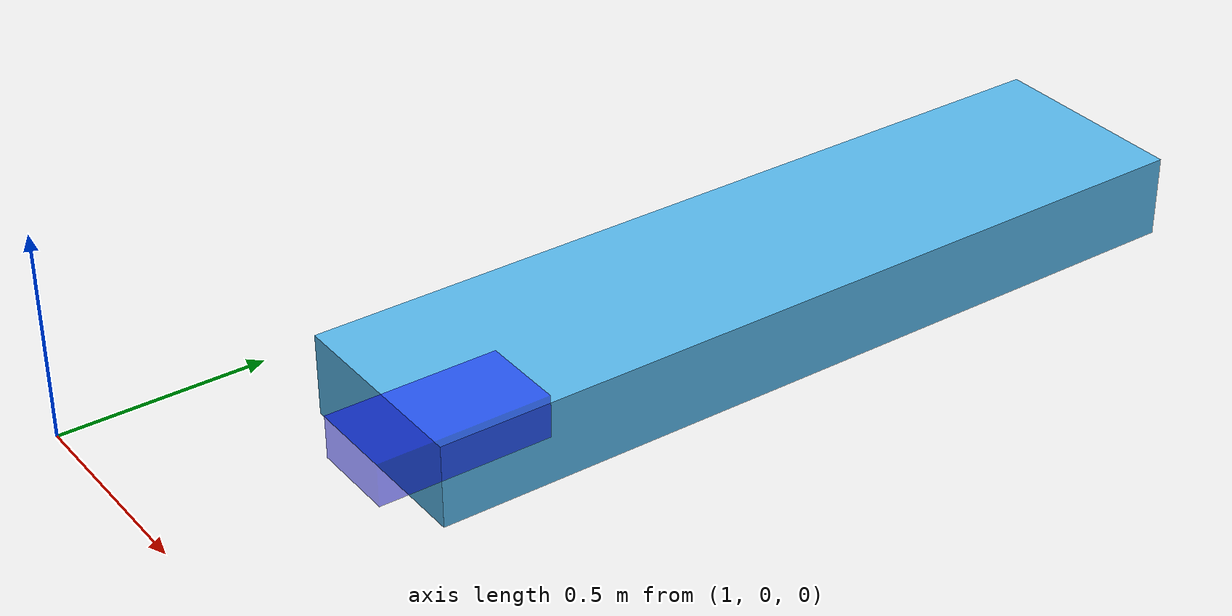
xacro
<?xml version="1.0"?>
<robot xmlns:xacro="http://www.ros.org/wiki/xacro" name="robot">
    <link name="world"/>

    <joint name="base_joint" type="fixed">
        <parent link="world"/>
        <child link="base_link"/>
        <origin xyz="1.5 0.5 0.1"/>
    </joint>

    <link name="base_link">
        <visual>
            <origin xyz="0 1 0" rpy="0 0 0"/>
            <geometry>
                <box size="0.5 2 0.2"/>
            </geometry>
        </visual>
        <collision>
            <origin xyz="0 1 0" rpy="0 0 0"/>
            <geometry>
                <box size="0.5 2 0.2"/>
            </geometry>
        </collision>
        <inertial>
            <origin xyz="0 1 0" rpy="0 0 0"/>
            <mass value="2"/>
            <inertia ixx="0.6733" ixy="0.0" ixz="0.0" iyy="0.04833" iyz="0.0" izz="0.7083"/>
        </inertial>
    </link>

    <joint name="left_slider_joint" type="prismatic">
        <origin xyz="0.25 0 0.1" rpy="0 0 0"/>
        <parent link="base_link"/>
        <child link="left_slider_link"/>
        <axis xyz="0 1 0"/>
        <limit upper="2" lower="0" effort="100.0" velocity="10.0"/>
    </joint>

    <link name="left_slider_link">
        <visual>
            <origin xyz="0 0 0.05" rpy="0 0 0"/>
            <geometry>
                <box size="0.2 0.4 0.1"/>
            </geometry>
            <material name="blue">
                <color rgba="0 0 1 0.5"/>
            </material>
        </visual>
        <collision>
            <origin xyz="0 0 0.05" rpy="0 0 0"/>
            <geometry>
                <box size="0.2 0.4 0.1"/>
            </geometry>
        </collision>
        <inertial>
            <origin xyz="0 0 0.05" rpy="0 0 0"/>
            <mass value="0.5"/>
            <inertia ixx="0.007083" ixy="0.0" ixz="0.0" iyy="0.0020833" iyz="0.0" izz="0.008333"/>
        </inertial>
    </link>
</robot>
